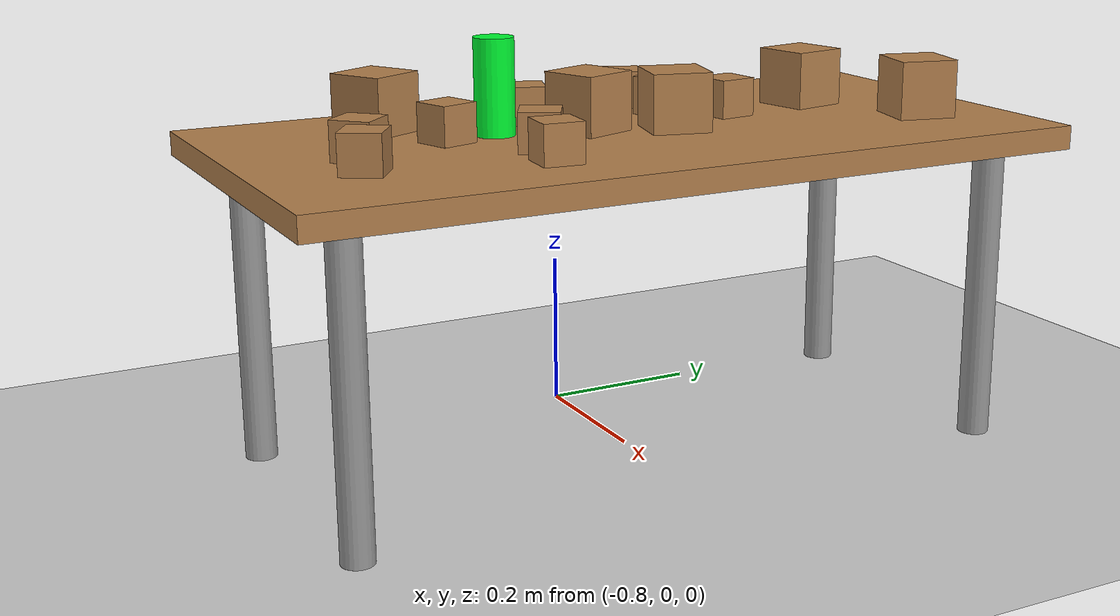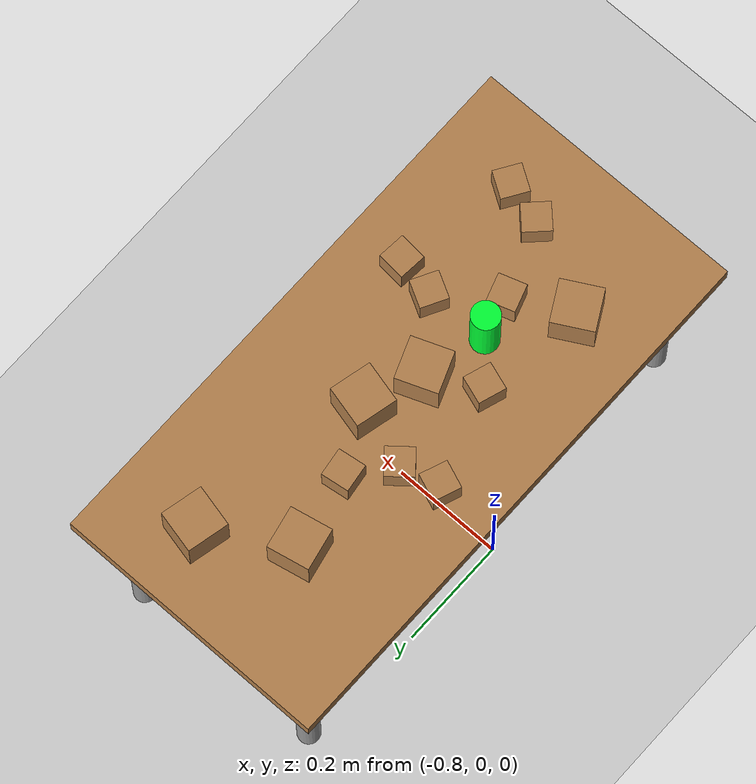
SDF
<sdf version="1.6">
 <world name="default">
  <plugin name="gazebo_geometries_plugin" filename="libgazebo_geometries_plugin.so"/>
  <plugin name="libgazebo_scene_randomiser_plugin" filename="libgazebo_scene_randomiser_plugin.so"/>
  <model name="ground_plane">
   <static>1</static>
   <link name="link">
    <collision name="collision">
     <geometry><plane><normal>0 0 1</normal><size>100 100</size></plane></geometry>
     <surface>
      <contact><collide_bitmask>65535</collide_bitmask></contact>
      <friction><ode><mu>100</mu><mu2>50</mu2></ode></friction>
     </surface>
    </collision>
    <visual name="visual">
     <cast_shadows>0</cast_shadows>
     <geometry><plane><normal>0 0 1</normal><size>100 100</size></plane></geometry>
     <material>
      <script><uri>file://media/materials/scripts/gazebo.material</uri><name>Gazebo/Grey</name></script>
     </material>
    </visual>
   </link>
  </model>
  <light name="sun" type="directional">
   <pose>0 0 10 0 -0 0</pose>
   <diffuse>0.8 0.8 0.8 1</diffuse>
   <specular>0.2 0.2 0.2 1</specular>
   <attenuation>
    <range>1000</range>
    <constant>0.9</constant>
    <linear>0.01</linear>
    <quadratic>0.001</quadratic>
   </attenuation>
   <direction>-0.5 0.1 -0.9</direction>
  </light>
  <gravity>0 0 -9.8</gravity>
  <magnetic_field>6e-06 2.3e-05 -4.2e-05</magnetic_field>
  <atmosphere type="adiabatic"/>
  <physics name="default_physics" default="0" type="ode">
   <max_step_size>0.001</max_step_size>
   <real_time_factor>1</real_time_factor>
   <real_time_update_rate>1000</real_time_update_rate>
  </physics>
  <scene><ambient>0.4 0.4 0.4 1</ambient><background>0.7 0.7 0.7 1</background><shadows>1</shadows></scene>
  <audio><device>default</device></audio>
  <spherical_coordinates>
   <surface_model>EARTH_WGS84</surface_model>
   <latitude_deg>0</latitude_deg>
   <longitude_deg>0</longitude_deg>
   <elevation>0</elevation>
   <heading_deg>0</heading_deg>
  </spherical_coordinates>
  <model name="wood_cube_7_5cm">
   <link name="link">
    <pose>0 0 0.0375 0 -0 0</pose>
    <inertial>
     <mass>0.2249</mass>
     <inertia>
      <ixx>0.000210844</ixx>
      <ixy>0</ixy>
      <ixz>0</ixz>
      <iyy>0.000210844</iyy>
      <iyz>0</iyz>
      <izz>0.000210844</izz>
     </inertia>
    </inertial>
    <collision name="collision">
     <geometry><box><size>0.075 0.075 0.075</size></box></geometry>
     <surface>
      <contact>
       <poissons_ratio>0.347</poissons_ratio>
       <elastic_modulus>8.8e+09</elastic_modulus>
       <ode><kp>100000</kp><kd>100</kd><max_vel>100</max_vel><min_depth>0.001</min_depth></ode>
      </contact>
      <friction>
       <torsional>
        <coefficient>1</coefficient>
        <use_patch_radius>0</use_patch_radius>
        <surface_radius>0.01</surface_radius>
       </torsional>
      </friction>
     </surface>
    </collision>
    <visual name="visual">
     <geometry><box><size>0.075 0.075 0.075</size></box></geometry>
     <material>
      <script><uri>file://media/materials/scripts/gazebo.material</uri><name>Gazebo/Wood</name></script>
     </material>
    </visual>
   </link>
   <pose>-0.568476 0.053713 0.413995 0 -0 2.90015</pose>
  </model>
  <model name="wood_cube_5cm">
   <link name="link">
    <pose>0 0 0.025 0 -0 0</pose>
    <inertial>
     <mass>0.0565</mass>
     <inertia>
      <ixx>2.35417e-05</ixx>
      <ixy>0</ixy>
      <ixz>0</ixz>
      <iyy>2.35417e-05</iyy>
      <iyz>0</iyz>
      <izz>2.35417e-05</izz>
     </inertia>
    </inertial>
    <collision name="collision">
     <geometry><box><size>0.05 0.05 0.05</size></box></geometry>
     <surface>
      <contact>
       <poissons_ratio>0.347</poissons_ratio>
       <elastic_modulus>8.8e+09</elastic_modulus>
       <ode><kp>100000</kp><kd>1</kd><max_vel>1</max_vel><min_depth>0.001</min_depth></ode>
      </contact>
      <friction>
       <torsional>
        <coefficient>1</coefficient>
        <use_patch_radius>0</use_patch_radius>
        <surface_radius>0.05</surface_radius>
       </torsional>
      </friction>
     </surface>
    </collision>
    <visual name="visual">
     <geometry><box><size>0.05 0.05 0.05</size></box></geometry>
     <material>
      <script><uri>file://media/materials/scripts/gazebo.material</uri><name>Gazebo/Wood</name></script>
     </material>
    </visual>
   </link>
   <pose>-0.620479 -0.228015 0.413999 0 0 -2.82995</pose>
  </model>
  <model name="wood_cube_7_5cm_0">
   <link name="link">
    <pose>0 0 0.0375 0 -0 0</pose>
    <inertial>
     <mass>0.2249</mass>
     <inertia>
      <ixx>0.000210844</ixx>
      <ixy>0</ixy>
      <ixz>0</ixz>
      <iyy>0.000210844</iyy>
      <iyz>0</iyz>
      <izz>0.000210844</izz>
     </inertia>
    </inertial>
    <collision name="collision">
     <geometry><box><size>0.075 0.075 0.075</size></box></geometry>
     <surface>
      <contact>
       <poissons_ratio>0.347</poissons_ratio>
       <elastic_modulus>8.8e+09</elastic_modulus>
       <ode><kp>100000</kp><kd>100</kd><max_vel>100</max_vel><min_depth>0.001</min_depth></ode>
      </contact>
      <friction>
       <torsional>
        <coefficient>1</coefficient>
        <use_patch_radius>0</use_patch_radius>
        <surface_radius>0.01</surface_radius>
       </torsional>
      </friction>
     </surface>
    </collision>
    <visual name="visual">
     <geometry><box><size>0.075 0.075 0.075</size></box></geometry>
     <material>
      <script><uri>file://media/materials/scripts/gazebo.material</uri><name>Gazebo/Wood</name></script>
     </material>
    </visual>
   </link>
   <pose>-0.506904 0.378737 0.413995 0 -0 2.91339</pose>
  </model>
  <model name="wood_cube_5cm_0">
   <link name="link">
    <pose>0 0 0.025 0 -0 0</pose>
    <inertial>
     <mass>0.0565</mass>
     <inertia>
      <ixx>2.35417e-05</ixx>
      <ixy>0</ixy>
      <ixz>0</ixz>
      <iyy>2.35417e-05</iyy>
      <iyz>0</iyz>
      <izz>2.35417e-05</izz>
     </inertia>
    </inertial>
    <collision name="collision">
     <geometry><box><size>0.05 0.05 0.05</size></box></geometry>
     <surface>
      <contact>
       <poissons_ratio>0.347</poissons_ratio>
       <elastic_modulus>8.8e+09</elastic_modulus>
       <ode><kp>100000</kp><kd>1</kd><max_vel>1</max_vel><min_depth>0.001</min_depth></ode>
      </contact>
      <friction>
       <torsional>
        <coefficient>1</coefficient>
        <use_patch_radius>0</use_patch_radius>
        <surface_radius>0.05</surface_radius>
       </torsional>
      </friction>
     </surface>
    </collision>
    <visual name="visual">
     <geometry><box><size>0.05 0.05 0.05</size></box></geometry>
     <material>
      <script><uri>file://media/materials/scripts/gazebo.material</uri><name>Gazebo/Wood</name></script>
     </material>
    </visual>
   </link>
   <pose>-0.572516 -0.354462 0.413999 0 -0 2.3472</pose>
  </model>
  <model name="cylinder">
   <link name="link">
    <inertial>
     <mass>0.1</mass>
     <inertia>
      <ixx>0.00013563</ixx>
      <ixy>0</ixy>
      <ixz>0</ixz>
      <iyy>0.00013563</iyy>
      <iyz>0</iyz>
      <izz>3.125e-05</izz>
     </inertia>
    </inertial>
    <visual name="visual">
     <geometry><cylinder><radius>0.025</radius><length>0.12</length></cylinder></geometry>
     <material>
      <script><name>Gazebo/Grey</name><uri>file://media/materials/scripts/gazebo.material</uri></script>
      <shader type="vertex"><normal_map>__default__</normal_map></shader>
      <ambient>0 1 0.2 1</ambient>
      <diffuse>0.7 0.7 0.7 1</diffuse>
      <specular>0.01 0.01 0.01 1</specular>
      <emissive>0 0 0 1</emissive>
     </material>
    </visual>
    <collision name="collision">
     <geometry><cylinder><radius>0.025</radius><length>0.12</length></cylinder></geometry>
     <surface>
      <friction>
       <ode><mu>1</mu><mu2>1</mu2><fdir1>0 0 0</fdir1><slip1>0</slip1><slip2>0</slip2></ode>
       <torsional>
        <coefficient>1</coefficient>
        <patch_radius>0</patch_radius>
        <surface_radius>0</surface_radius>
        <use_patch_radius>1</use_patch_radius>
        <ode><slip>0</slip></ode>
       </torsional>
      </friction>
      <bounce><restitution_coefficient>0</restitution_coefficient><threshold>1e+06</threshold></bounce>
      <contact>
       <collide_without_contact>0</collide_without_contact>
       <collide_without_contact_bitmask>1</collide_without_contact_bitmask>
       <collide_bitmask>1</collide_bitmask>
       <ode>
        <soft_cfm>0</soft_cfm>
        <soft_erp>0.2</soft_erp>
        <kp>1e+07</kp>
        <kd>1</kd>
        <max_vel>0.1</max_vel>
        <min_depth>0.001</min_depth>
       </ode>
       <bullet>
        <split_impulse>1</split_impulse>
        <split_impulse_penetration_threshold>-0.01</split_impulse_penetration_threshold>
        <soft_cfm>0</soft_cfm>
        <soft_erp>0.2</soft_erp>
        <kp>1e+07</kp>
        <kd>1</kd>
       </bullet>
      </contact>
     </surface>
    </collision>
   </link>
   <static>0</static>
   <pose>-0.635608 -0.158907 0.474441 -0.000169 -3e-05 1.84108</pose>
  </model>
  <model name="wood_cube_7_5cm_1">
   <link name="link">
    <pose>0 0 0.0375 0 -0 0</pose>
    <inertial>
     <mass>0.2249</mass>
     <inertia>
      <ixx>0.000210844</ixx>
      <ixy>0</ixy>
      <ixz>0</ixz>
      <iyy>0.000210844</iyy>
      <iyz>0</iyz>
      <izz>0.000210844</izz>
     </inertia>
    </inertial>
    <collision name="collision">
     <geometry><box><size>0.075 0.075 0.075</size></box></geometry>
     <surface>
      <contact>
       <poissons_ratio>0.347</poissons_ratio>
       <elastic_modulus>8.8e+09</elastic_modulus>
       <ode><kp>100000</kp><kd>100</kd><max_vel>100</max_vel><min_depth>0.001</min_depth></ode>
      </contact>
      <friction>
       <torsional>
        <coefficient>1</coefficient>
        <use_patch_radius>0</use_patch_radius>
        <surface_radius>0.01</surface_radius>
       </torsional>
      </friction>
     </surface>
    </collision>
    <visual name="visual">
     <geometry><box><size>0.075 0.075 0.075</size></box></geometry>
     <material>
      <script><uri>file://media/materials/scripts/gazebo.material</uri><name>Gazebo/Wood</name></script>
     </material>
    </visual>
   </link>
   <pose>-0.72268 -0.278911 0.413995 0 -0 0.501191</pose>
  </model>
  <model name="wood_cube_7_5cm_2">
   <link name="link">
    <pose>0 0 0.0375 0 -0 0</pose>
    <inertial>
     <mass>0.2249</mass>
     <inertia>
      <ixx>0.000210844</ixx>
      <ixy>0</ixy>
      <ixz>0</ixz>
      <iyy>0.000210844</iyy>
      <iyz>0</iyz>
      <izz>0.000210844</izz>
     </inertia>
    </inertial>
    <collision name="collision">
     <geometry><box><size>0.075 0.075 0.075</size></box></geometry>
     <surface>
      <contact>
       <poissons_ratio>0.347</poissons_ratio>
       <elastic_modulus>8.8e+09</elastic_modulus>
       <ode><kp>100000</kp><kd>100</kd><max_vel>100</max_vel><min_depth>0.001</min_depth></ode>
      </contact>
      <friction>
       <torsional>
        <coefficient>1</coefficient>
        <use_patch_radius>0</use_patch_radius>
        <surface_radius>0.01</surface_radius>
       </torsional>
      </friction>
     </surface>
    </collision>
    <visual name="visual">
     <geometry><box><size>0.075 0.075 0.075</size></box></geometry>
     <material>
      <script><uri>file://media/materials/scripts/gazebo.material</uri><name>Gazebo/Wood</name></script>
     </material>
    </visual>
   </link>
   <pose>-0.649527 0.294096 0.413995 0 -0 0.20393</pose>
  </model>
  <model name="wood_cube_5cm_1">
   <link name="link">
    <pose>0 0 0.025 0 -0 0</pose>
    <inertial>
     <mass>0.0565</mass>
     <inertia>
      <ixx>2.35417e-05</ixx>
      <ixy>0</ixy>
      <ixz>0</ixz>
      <iyy>2.35417e-05</iyy>
      <iyz>0</iyz>
      <izz>2.35417e-05</izz>
     </inertia>
    </inertial>
    <collision name="collision">
     <geometry><box><size>0.05 0.05 0.05</size></box></geometry>
     <surface>
      <contact>
       <poissons_ratio>0.347</poissons_ratio>
       <elastic_modulus>8.8e+09</elastic_modulus>
       <ode><kp>100000</kp><kd>1</kd><max_vel>1</max_vel><min_depth>0.001</min_depth></ode>
      </contact>
      <friction>
       <torsional>
        <coefficient>1</coefficient>
        <use_patch_radius>0</use_patch_radius>
        <surface_radius>0.05</surface_radius>
       </torsional>
      </friction>
     </surface>
    </collision>
    <visual name="visual">
     <geometry><box><size>0.05 0.05 0.05</size></box></geometry>
     <material>
      <script><uri>file://media/materials/scripts/gazebo.material</uri><name>Gazebo/Wood</name></script>
     </material>
    </visual>
   </link>
   <pose>-0.746851 0.07439 0.413999 0 0 -0.369465</pose>
  </model>
  <model name="wood_cube_5cm_2">
   <link name="link">
    <pose>0 0 0.025 0 -0 0</pose>
    <inertial>
     <mass>0.0565</mass>
     <inertia>
      <ixx>2.35417e-05</ixx>
      <ixy>0</ixy>
      <ixz>0</ixz>
      <iyy>2.35417e-05</iyy>
      <iyz>0</iyz>
      <izz>2.35417e-05</izz>
     </inertia>
    </inertial>
    <collision name="collision">
     <geometry><box><size>0.05 0.05 0.05</size></box></geometry>
     <surface>
      <contact>
       <poissons_ratio>0.347</poissons_ratio>
       <elastic_modulus>8.8e+09</elastic_modulus>
       <ode><kp>100000</kp><kd>1</kd><max_vel>1</max_vel><min_depth>0.001</min_depth></ode>
      </contact>
      <friction>
       <torsional>
        <coefficient>1</coefficient>
        <use_patch_radius>0</use_patch_radius>
        <surface_radius>0.05</surface_radius>
       </torsional>
      </friction>
     </surface>
    </collision>
    <visual name="visual">
     <geometry><box><size>0.05 0.05 0.05</size></box></geometry>
     <material>
      <script><uri>file://media/materials/scripts/gazebo.material</uri><name>Gazebo/Wood</name></script>
     </material>
    </visual>
   </link>
   <pose>-0.693012 -0.092281 0.413999 0 0 -1.89664</pose>
  </model>
  <model name="wood_cube_7_5cm_4">
   <link name="link">
    <pose>0 0 0.0375 0 -0 0</pose>
    <inertial>
     <mass>0.2249</mass>
     <inertia>
      <ixx>0.000210844</ixx>
      <ixy>0</ixy>
      <ixz>0</ixz>
      <iyy>0.000210844</iyy>
      <iyz>0</iyz>
      <izz>0.000210844</izz>
     </inertia>
    </inertial>
    <collision name="collision">
     <geometry><box><size>0.075 0.075 0.075</size></box></geometry>
     <surface>
      <contact>
       <poissons_ratio>0.347</poissons_ratio>
       <elastic_modulus>8.8e+09</elastic_modulus>
       <ode><kp>100000</kp><kd>100</kd><max_vel>100</max_vel><min_depth>0.001</min_depth></ode>
      </contact>
      <friction>
       <torsional>
        <coefficient>1</coefficient>
        <use_patch_radius>0</use_patch_radius>
        <surface_radius>0.01</surface_radius>
       </torsional>
      </friction>
     </surface>
    </collision>
    <visual name="visual">
     <geometry><box><size>0.075 0.075 0.075</size></box></geometry>
     <material>
      <script><uri>file://media/materials/scripts/gazebo.material</uri><name>Gazebo/Wood</name></script>
     </material>
    </visual>
   </link>
   <pose>-0.607695 -0.04602 0.413995 0 -0 1.93724</pose>
  </model>
  <model name="wood_cube_5cm_4">
   <link name="link">
    <pose>0 0 0.025 0 -0 0</pose>
    <inertial>
     <mass>0.0565</mass>
     <inertia>
      <ixx>2.35417e-05</ixx>
      <ixy>0</ixy>
      <ixz>0</ixz>
      <iyy>2.35417e-05</iyy>
      <iyz>0</iyz>
      <izz>2.35417e-05</izz>
     </inertia>
    </inertial>
    <collision name="collision">
     <geometry><box><size>0.05 0.05 0.05</size></box></geometry>
     <surface>
      <contact>
       <poissons_ratio>0.347</poissons_ratio>
       <elastic_modulus>8.8e+09</elastic_modulus>
       <ode><kp>100000</kp><kd>1</kd><max_vel>1</max_vel><min_depth>0.001</min_depth></ode>
      </contact>
      <friction>
       <torsional>
        <coefficient>1</coefficient>
        <use_patch_radius>0</use_patch_radius>
        <surface_radius>0.05</surface_radius>
       </torsional>
      </friction>
     </surface>
    </collision>
    <visual name="visual">
     <geometry><box><size>0.05 0.05 0.05</size></box></geometry>
     <material>
      <script><uri>file://media/materials/scripts/gazebo.material</uri><name>Gazebo/Wood</name></script>
     </material>
    </visual>
   </link>
   <pose>-0.678753 0.092677 0.413999 0 -0 2.26293</pose>
  </model>
  <model name="wood_cube_5cm_6">
   <link name="link">
    <pose>0 0 0.025 0 -0 0</pose>
    <inertial>
     <mass>0.0565</mass>
     <inertia>
      <ixx>2.35417e-05</ixx>
      <ixy>0</ixy>
      <ixz>0</ixz>
      <iyy>2.35417e-05</iyy>
      <iyz>0</iyz>
      <izz>2.35417e-05</izz>
     </inertia>
    </inertial>
    <collision name="collision">
     <geometry><box><size>0.05 0.05 0.05</size></box></geometry>
     <surface>
      <contact>
       <poissons_ratio>0.347</poissons_ratio>
       <elastic_modulus>8.8e+09</elastic_modulus>
       <ode><kp>100000</kp><kd>1</kd><max_vel>1</max_vel><min_depth>0.001</min_depth></ode>
      </contact>
      <friction>
       <torsional>
        <coefficient>1</coefficient>
        <use_patch_radius>0</use_patch_radius>
        <surface_radius>0.05</surface_radius>
       </torsional>
      </friction>
     </surface>
    </collision>
    <visual name="visual">
     <geometry><box><size>0.05 0.05 0.05</size></box></geometry>
     <material>
      <script><uri>file://media/materials/scripts/gazebo.material</uri><name>Gazebo/Wood</name></script>
     </material>
    </visual>
   </link>
   <pose>-0.456753 -0.163625 0.413999 0 -0 1.48135</pose>
  </model>
  <model name="wood_cube_5cm_7">
   <link name="link">
    <pose>0 0 0.025 0 -0 0</pose>
    <inertial>
     <mass>0.0565</mass>
     <inertia>
      <ixx>2.35417e-05</ixx>
      <ixy>0</ixy>
      <ixz>0</ixz>
      <iyy>2.35417e-05</iyy>
      <iyz>0</iyz>
      <izz>2.35417e-05</izz>
     </inertia>
    </inertial>
    <collision name="collision">
     <geometry><box><size>0.05 0.05 0.05</size></box></geometry>
     <surface>
      <contact>
       <poissons_ratio>0.347</poissons_ratio>
       <elastic_modulus>8.8e+09</elastic_modulus>
       <ode><kp>100000</kp><kd>1</kd><max_vel>1</max_vel><min_depth>0.001</min_depth></ode>
      </contact>
      <friction>
       <torsional>
        <coefficient>1</coefficient>
        <use_patch_radius>0</use_patch_radius>
        <surface_radius>0.05</surface_radius>
       </torsional>
      </friction>
     </surface>
    </collision>
    <visual name="visual">
     <geometry><box><size>0.05 0.05 0.05</size></box></geometry>
     <material>
      <script><uri>file://media/materials/scripts/gazebo.material</uri><name>Gazebo/Wood</name></script>
     </material>
    </visual>
   </link>
   <pose>-0.525326 -0.150979 0.413999 0 0 -2.06935</pose>
  </model>
  <model name="small_table">
   <link name="link">
    <inertial>
     <mass>0.882445</mass>
     <inertia>
      <ixx>0.0112042</ixx>
      <ixy>0</ixy>
      <ixz>0</ixz>
      <iyy>0.0112042</iyy>
      <iyz>0</iyz>
      <izz>0.00023532</izz>
     </inertia>
    </inertial>
    <visual name="visual1">
     <pose>0 0 0.4 0 -0 0</pose>
     <geometry><box><size>1 0.5 0.03</size></box></geometry>
     <material>
      <script><uri>file://media/materials/scripts/gazebo.material</uri><name>Gazebo/Wood</name></script>
      <shader type="vertex"><normal_map>__default__</normal_map></shader>
      <ambient>1 1 1 1</ambient>
      <diffuse>1 1 1 1</diffuse>
      <specular>0.2 0.2 0.2 1</specular>
      <emissive>0 0 0 1</emissive>
     </material>
    </visual>
    <visual name="front_left_leg">
     <pose>0.43 0.18 0.1925 0 -0 0</pose>
     <geometry><cylinder><radius>0.02</radius><length>0.385</length></cylinder></geometry>
     <material>
      <script><uri>file://media/materials/scripts/gazebo.material</uri><name>Gazebo/Grey</name></script>
      <shader type="vertex"><normal_map>__default__</normal_map></shader>
      <ambient>0.3 0.3 0.3 1</ambient>
      <diffuse>0.7 0.7 0.7 1</diffuse>
      <specular>0.01 0.01 0.01 1</specular>
      <emissive>0 0 0 1</emissive>
     </material>
    </visual>
    <visual name="back_right_leg">
     <pose>-0.43 -0.18 0.1925 0 -0 0</pose>
     <geometry><cylinder><radius>0.02</radius><length>0.385</length></cylinder></geometry>
     <material>
      <script><uri>file://media/materials/scripts/gazebo.material</uri><name>Gazebo/Grey</name></script>
      <shader type="vertex"><normal_map>__default__</normal_map></shader>
      <ambient>0.3 0.3 0.3 1</ambient>
      <diffuse>0.7 0.7 0.7 1</diffuse>
      <specular>0.01 0.01 0.01 1</specular>
      <emissive>0 0 0 1</emissive>
     </material>
    </visual>
    <visual name="front_right_leg">
     <pose>0.43 -0.18 0.1925 0 -0 0</pose>
     <geometry><cylinder><radius>0.02</radius><length>0.385</length></cylinder></geometry>
     <material>
      <script><uri>file://media/materials/scripts/gazebo.material</uri><name>Gazebo/Grey</name></script>
      <shader type="vertex"><normal_map>__default__</normal_map></shader>
      <ambient>0.3 0.3 0.3 1</ambient>
      <diffuse>0.7 0.7 0.7 1</diffuse>
      <specular>0.01 0.01 0.01 1</specular>
      <emissive>0 0 0 1</emissive>
     </material>
    </visual>
    <visual name="back_left_leg">
     <pose>-0.43 0.18 0.1925 0 -0 0</pose>
     <geometry><cylinder><radius>0.02</radius><length>0.385</length></cylinder></geometry>
     <material>
      <script><uri>file://media/materials/scripts/gazebo.material</uri><name>Gazebo/Grey</name></script>
      <shader type="vertex"><normal_map>__default__</normal_map></shader>
      <ambient>0.3 0.3 0.3 1</ambient>
      <diffuse>0.7 0.7 0.7 1</diffuse>
      <specular>0.01 0.01 0.01 1</specular>
      <emissive>0 0 0 1</emissive>
     </material>
    </visual>
    <collision name="surface">
     <pose>0 0 0.4 0 -0 0</pose>
     <geometry><box><size>1 0.5 0.03</size></box></geometry>
     <surface>
      <friction>
       <ode><mu>0.6</mu><mu2>0.6</mu2><fdir1>0 0 0</fdir1><slip1>0</slip1><slip2>0</slip2></ode>
       <torsional>
        <coefficient>1</coefficient>
        <patch_radius>0</patch_radius>
        <surface_radius>0</surface_radius>
        <use_patch_radius>1</use_patch_radius>
        <ode><slip>0</slip></ode>
       </torsional>
      </friction>
      <bounce><restitution_coefficient>0</restitution_coefficient><threshold>1e+06</threshold></bounce>
      <contact>
       <collide_without_contact>0</collide_without_contact>
       <collide_without_contact_bitmask>1</collide_without_contact_bitmask>
       <collide_bitmask>1</collide_bitmask>
       <ode>
        <soft_cfm>0</soft_cfm>
        <soft_erp>0.2</soft_erp>
        <kp>1e+13</kp>
        <kd>1</kd>
        <max_vel>0.01</max_vel>
        <min_depth>0</min_depth>
       </ode>
       <bullet>
        <split_impulse>1</split_impulse>
        <split_impulse_penetration_threshold>-0.01</split_impulse_penetration_threshold>
        <soft_cfm>0</soft_cfm>
        <soft_erp>0.2</soft_erp>
        <kp>1e+13</kp>
        <kd>1</kd>
       </bullet>
      </contact>
     </surface>
    </collision>
    <collision name="front_right_leg">
     <pose>0.43 -0.18 0.1925 0 -0 0</pose>
     <geometry><cylinder><radius>0.02</radius><length>0.385</length></cylinder></geometry>
     <surface>
      <friction>
       <ode><mu>1</mu><mu2>1</mu2><fdir1>0 0 0</fdir1><slip1>0</slip1><slip2>0</slip2></ode>
       <torsional>
        <coefficient>1</coefficient>
        <patch_radius>0</patch_radius>
        <surface_radius>0</surface_radius>
        <use_patch_radius>1</use_patch_radius>
        <ode><slip>0</slip></ode>
       </torsional>
      </friction>
      <bounce><restitution_coefficient>0</restitution_coefficient><threshold>1e+06</threshold></bounce>
      <contact>
       <collide_without_contact>0</collide_without_contact>
       <collide_without_contact_bitmask>1</collide_without_contact_bitmask>
       <collide_bitmask>1</collide_bitmask>
       <ode>
        <soft_cfm>0</soft_cfm>
        <soft_erp>0.2</soft_erp>
        <kp>1e+13</kp>
        <kd>1</kd>
        <max_vel>0.01</max_vel>
        <min_depth>0</min_depth>
       </ode>
       <bullet>
        <split_impulse>1</split_impulse>
        <split_impulse_penetration_threshold>-0.01</split_impulse_penetration_threshold>
        <soft_cfm>0</soft_cfm>
        <soft_erp>0.2</soft_erp>
        <kp>1e+13</kp>
        <kd>1</kd>
       </bullet>
      </contact>
     </surface>
    </collision>
    <collision name="back_right_leg">
     <pose>-0.43 -0.18 0.1925 0 -0 0</pose>
     <geometry><cylinder><radius>0.02</radius><length>0.385</length></cylinder></geometry>
     <surface>
      <friction>
       <ode><mu>1</mu><mu2>1</mu2><fdir1>0 0 0</fdir1><slip1>0</slip1><slip2>0</slip2></ode>
       <torsional>
        <coefficient>1</coefficient>
        <patch_radius>0</patch_radius>
        <surface_radius>0</surface_radius>
        <use_patch_radius>1</use_patch_radius>
        <ode><slip>0</slip></ode>
       </torsional>
      </friction>
      <bounce><restitution_coefficient>0</restitution_coefficient><threshold>1e+06</threshold></bounce>
      <contact>
       <collide_without_contact>0</collide_without_contact>
       <collide_without_contact_bitmask>1</collide_without_contact_bitmask>
       <collide_bitmask>1</collide_bitmask>
       <ode>
        <soft_cfm>0</soft_cfm>
        <soft_erp>0.2</soft_erp>
        <kp>1e+13</kp>
        <kd>1</kd>
        <max_vel>0.01</max_vel>
        <min_depth>0</min_depth>
       </ode>
       <bullet>
        <split_impulse>1</split_impulse>
        <split_impulse_penetration_threshold>-0.01</split_impulse_penetration_threshold>
        <soft_cfm>0</soft_cfm>
        <soft_erp>0.2</soft_erp>
        <kp>1e+13</kp>
        <kd>1</kd>
       </bullet>
      </contact>
     </surface>
    </collision>
    <collision name="front_left_leg">
     <pose>0.43 0.18 0.1925 0 -0 0</pose>
     <geometry><cylinder><radius>0.02</radius><length>0.385</length></cylinder></geometry>
     <surface>
      <friction>
       <ode><mu>1</mu><mu2>1</mu2><fdir1>0 0 0</fdir1><slip1>0</slip1><slip2>0</slip2></ode>
       <torsional>
        <coefficient>1</coefficient>
        <patch_radius>0</patch_radius>
        <surface_radius>0</surface_radius>
        <use_patch_radius>1</use_patch_radius>
        <ode><slip>0</slip></ode>
       </torsional>
      </friction>
      <bounce><restitution_coefficient>0</restitution_coefficient><threshold>1e+06</threshold></bounce>
      <contact>
       <collide_without_contact>0</collide_without_contact>
       <collide_without_contact_bitmask>1</collide_without_contact_bitmask>
       <collide_bitmask>1</collide_bitmask>
       <ode>
        <soft_cfm>0</soft_cfm>
        <soft_erp>0.2</soft_erp>
        <kp>1e+13</kp>
        <kd>1</kd>
        <max_vel>0.01</max_vel>
        <min_depth>0</min_depth>
       </ode>
       <bullet>
        <split_impulse>1</split_impulse>
        <split_impulse_penetration_threshold>-0.01</split_impulse_penetration_threshold>
        <soft_cfm>0</soft_cfm>
        <soft_erp>0.2</soft_erp>
        <kp>1e+13</kp>
        <kd>1</kd>
       </bullet>
      </contact>
     </surface>
    </collision>
    <collision name="back_left_leg">
     <pose>-0.43 0.18 0.1925 0 -0 0</pose>
     <geometry><cylinder><radius>0.02</radius><length>0.385</length></cylinder></geometry>
     <surface>
      <friction>
       <ode><mu>1</mu><mu2>1</mu2><fdir1>0 0 0</fdir1><slip1>0</slip1><slip2>0</slip2></ode>
       <torsional>
        <coefficient>1</coefficient>
        <patch_radius>0</patch_radius>
        <surface_radius>0</surface_radius>
        <use_patch_radius>1</use_patch_radius>
        <ode><slip>0</slip></ode>
       </torsional>
      </friction>
      <bounce><restitution_coefficient>0</restitution_coefficient><threshold>1e+06</threshold></bounce>
      <contact>
       <collide_without_contact>0</collide_without_contact>
       <collide_without_contact_bitmask>1</collide_without_contact_bitmask>
       <collide_bitmask>1</collide_bitmask>
       <ode>
        <soft_cfm>0</soft_cfm>
        <soft_erp>0.2</soft_erp>
        <kp>1e+13</kp>
        <kd>1</kd>
        <max_vel>0.01</max_vel>
        <min_depth>0</min_depth>
       </ode>
       <bullet>
        <split_impulse>1</split_impulse>
        <split_impulse_penetration_threshold>-0.01</split_impulse_penetration_threshold>
        <soft_cfm>0</soft_cfm>
        <soft_erp>0.2</soft_erp>
        <kp>1e+13</kp>
        <kd>1</kd>
       </bullet>
      </contact>
     </surface>
    </collision>
   </link>
   <static>1</static>
   <pose>-0.6 0 0 0 -0 1.57</pose>
  </model>
  <model name="wood_cube_5cm_3">
   <link name="link">
    <pose>0 0 0.025 0 -0 0</pose>
    <inertial>
     <mass>0.0565</mass>
     <inertia>
      <ixx>2.35417e-05</ixx>
      <ixy>0</ixy>
      <ixz>0</ixz>
      <iyy>2.35417e-05</iyy>
      <iyz>0</iyz>
      <izz>2.35417e-05</izz>
     </inertia>
    </inertial>
    <collision name="collision">
     <geometry><box><size>0.05 0.05 0.05</size></box></geometry>
     <surface>
      <contact>
       <poissons_ratio>0.347</poissons_ratio>
       <elastic_modulus>8.8e+09</elastic_modulus>
       <ode><kp>100000</kp><kd>1</kd><max_vel>1</max_vel><min_depth>0.001</min_depth></ode>
      </contact>
      <friction>
       <torsional>
        <coefficient>1</coefficient>
        <use_patch_radius>0</use_patch_radius>
        <surface_radius>0.05</surface_radius>
       </torsional>
      </friction>
     </surface>
    </collision>
    <visual name="visual">
     <geometry><box><size>0.05 0.05 0.05</size></box></geometry>
     <material>
      <script><uri>file://media/materials/scripts/gazebo.material</uri><name>Gazebo/Wood</name></script>
     </material>
    </visual>
   </link>
   <pose>-0.621866 0.161097 0.413999 -0 -0 -1.43447</pose>
  </model>
  <model name="wood_cube_5cm_5">
   <link name="link">
    <pose>0 0 0.025 0 -0 0</pose>
    <inertial>
     <mass>0.0565</mass>
     <inertia>
      <ixx>2.35417e-05</ixx>
      <ixy>0</ixy>
      <ixz>0</ixz>
      <iyy>2.35417e-05</iyy>
      <iyz>0</iyz>
      <izz>2.35417e-05</izz>
     </inertia>
    </inertial>
    <collision name="collision">
     <geometry><box><size>0.05 0.05 0.05</size></box></geometry>
     <surface>
      <contact>
       <poissons_ratio>0.347</poissons_ratio>
       <elastic_modulus>8.8e+09</elastic_modulus>
       <ode><kp>100000</kp><kd>1</kd><max_vel>1</max_vel><min_depth>0.001</min_depth></ode>
      </contact>
      <friction>
       <torsional>
        <coefficient>1</coefficient>
        <use_patch_radius>0</use_patch_radius>
        <surface_radius>0.05</surface_radius>
       </torsional>
      </friction>
     </surface>
    </collision>
    <visual name="visual">
     <geometry><box><size>0.05 0.05 0.05</size></box></geometry>
     <material>
      <script><uri>file://media/materials/scripts/gazebo.material</uri><name>Gazebo/Wood</name></script>
     </material>
    </visual>
   </link>
   <pose>-0.502757 -0.373312 0.413999 0 0 -0.567912</pose>
  </model>
 </world>
</sdf>
